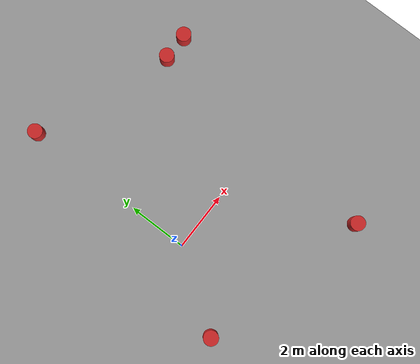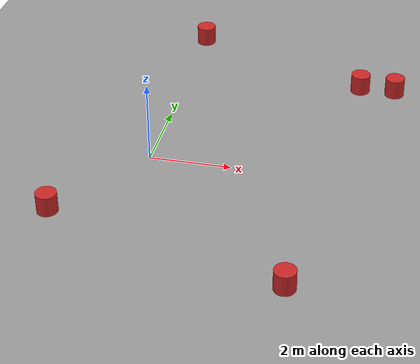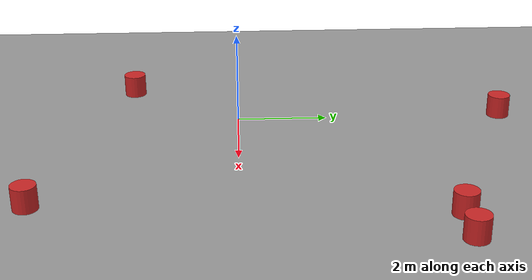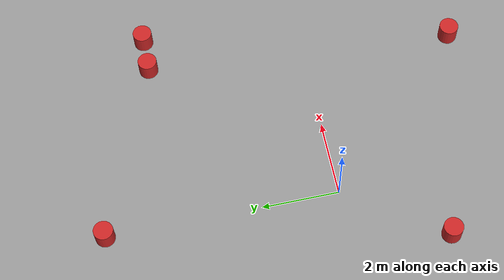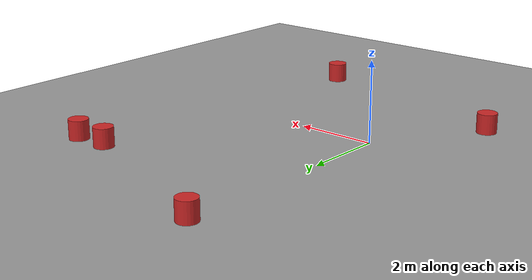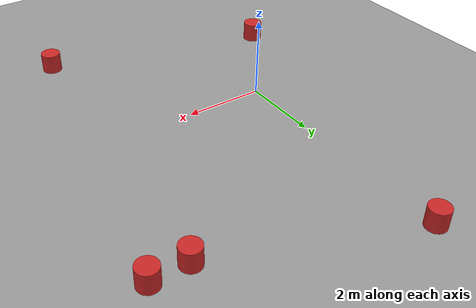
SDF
<sdf version="1.7">
 <world name="default">
  <gravity>0 0 -9.8</gravity>
  <magnetic_field>6e-06 2.3e-05 -4.2e-05</magnetic_field>
  <atmosphere type="adiabatic"/>
  <physics name="default_physics" default="0" type="ode">
   <max_step_size>0.001</max_step_size>
   <real_time_factor>1</real_time_factor>
   <real_time_update_rate>1000</real_time_update_rate>
  </physics>
  <scene><ambient>0.4 0.4 0.4 1</ambient><background>0.8 0.8 0.8 1</background><shadows>1</shadows></scene>
  <audio><device>default</device></audio>
  <spherical_coordinates>
   <surface_model>EARTH_WGS84</surface_model>
   <latitude_deg>0</latitude_deg>
   <longitude_deg>0</longitude_deg>
   <elevation>0</elevation>
   <heading_deg>0</heading_deg>
  </spherical_coordinates>
  <model name="Untitled"><pose>0.075 0 0 0 -0 0</pose><static>1</static></model>
  <model name="cylinder_0">
   <link name="link">
    <inertial>
     <mass>0.128591</mass>
     <inertia>
      <ixx>0.00474038</ixx>
      <ixy>0</ixy>
      <ixz>0</ixz>
      <iyy>0.00474038</iyy>
      <iyz>0</iyz>
      <izz>0.00414085</izz>
     </inertia>
    </inertial>
    <visual name="visual">
     <geometry><cylinder><radius>0.25</radius><length>0.5</length></cylinder></geometry>
     <material>
      <script><name>Gazebo/RedBright</name><uri>file://media/materials/scripts/gazebo.material</uri></script>
     </material>
    </visual>
    <collision name="collision">
     <geometry><cylinder><radius>0.25</radius><length>0.5</length></cylinder></geometry>
     <surface>
      <friction>
       <ode><mu>0</mu><mu2>0</mu2><fdir1>0 0 0</fdir1><slip1>0</slip1><slip2>0</slip2></ode>
       <torsional>
        <coefficient>1</coefficient>
        <patch_radius>0</patch_radius>
        <surface_radius>0</surface_radius>
        <use_patch_radius>1</use_patch_radius>
        <ode><slip>0</slip></ode>
       </torsional>
      </friction>
      <bounce><restitution_coefficient>0</restitution_coefficient><threshold>1e+06</threshold></bounce>
      <contact>
       <collide_without_contact>0</collide_without_contact>
       <collide_without_contact_bitmask>1</collide_without_contact_bitmask>
       <collide_bitmask>1</collide_bitmask>
       <ode>
        <soft_cfm>0</soft_cfm>
        <soft_erp>0.2</soft_erp>
        <kp>1e+13</kp>
        <kd>1</kd>
        <max_vel>0.01</max_vel>
        <min_depth>0</min_depth>
       </ode>
       <bullet>
        <split_impulse>1</split_impulse>
        <split_impulse_penetration_threshold>-0.01</split_impulse_penetration_threshold>
        <soft_cfm>0</soft_cfm>
        <soft_erp>0.2</soft_erp>
        <kp>1e+13</kp>
        <kd>1</kd>
       </bullet>
      </contact>
     </surface>
    </collision>
   </link>
   <static>0</static>
   <pose>5.5 4.2 0.249993 -7e-06 -6e-06 -0</pose>
  </model>
  <model name="cylinder_1">
   <link name="link">
    <inertial>
     <mass>0.128591</mass>
     <inertia>
      <ixx>0.00474038</ixx>
      <ixy>0</ixy>
      <ixz>0</ixz>
      <iyy>0.00474038</iyy>
      <iyz>0</iyz>
      <izz>0.00414085</izz>
     </inertia>
    </inertial>
    <visual name="visual">
     <geometry><cylinder><radius>0.25</radius><length>0.5</length></cylinder></geometry>
     <material>
      <script><name>Gazebo/RedBright</name><uri>file://media/materials/scripts/gazebo.material</uri></script>
     </material>
    </visual>
    <collision name="collision">
     <geometry><cylinder><radius>0.25</radius><length>0.5</length></cylinder></geometry>
     <surface>
      <friction>
       <ode><mu>0</mu><mu2>0</mu2><fdir1>0 0 0</fdir1><slip1>0</slip1><slip2>0</slip2></ode>
       <torsional>
        <coefficient>1</coefficient>
        <patch_radius>0</patch_radius>
        <surface_radius>0</surface_radius>
        <use_patch_radius>1</use_patch_radius>
        <ode><slip>0</slip></ode>
       </torsional>
      </friction>
      <bounce><restitution_coefficient>0</restitution_coefficient><threshold>1e+06</threshold></bounce>
      <contact>
       <collide_without_contact>0</collide_without_contact>
       <collide_without_contact_bitmask>1</collide_without_contact_bitmask>
       <collide_bitmask>1</collide_bitmask>
       <ode>
        <soft_cfm>0</soft_cfm>
        <soft_erp>0.2</soft_erp>
        <kp>1e+13</kp>
        <kd>1</kd>
        <max_vel>0.01</max_vel>
        <min_depth>0</min_depth>
       </ode>
       <bullet>
        <split_impulse>1</split_impulse>
        <split_impulse_penetration_threshold>-0.01</split_impulse_penetration_threshold>
        <soft_cfm>0</soft_cfm>
        <soft_erp>0.2</soft_erp>
        <kp>1e+13</kp>
        <kd>1</kd>
       </bullet>
      </contact>
     </surface>
    </collision>
   </link>
   <static>0</static>
   <pose>4 -4 0.249999 0 -0 0</pose>
  </model>
  <model name="cylinder_2">
   <link name="link">
    <inertial>
     <mass>0.128591</mass>
     <inertia>
      <ixx>0.00474038</ixx>
      <ixy>0</ixy>
      <ixz>0</ixz>
      <iyy>0.00474038</iyy>
      <iyz>0</iyz>
      <izz>0.00414085</izz>
     </inertia>
    </inertial>
    <visual name="visual">
     <geometry><cylinder><radius>0.25</radius><length>0.5</length></cylinder></geometry>
     <material>
      <script><name>Gazebo/RedBright</name><uri>file://media/materials/scripts/gazebo.material</uri></script>
     </material>
    </visual>
    <collision name="collision">
     <geometry><cylinder><radius>0.25</radius><length>0.5</length></cylinder></geometry>
     <surface>
      <friction>
       <ode><mu>0</mu><mu2>0</mu2><fdir1>0 0 0</fdir1><slip1>0</slip1><slip2>0</slip2></ode>
       <torsional>
        <coefficient>1</coefficient>
        <patch_radius>0</patch_radius>
        <surface_radius>0</surface_radius>
        <use_patch_radius>1</use_patch_radius>
        <ode><slip>0</slip></ode>
       </torsional>
      </friction>
      <bounce><restitution_coefficient>0</restitution_coefficient><threshold>1e+06</threshold></bounce>
      <contact>
       <collide_without_contact>0</collide_without_contact>
       <collide_without_contact_bitmask>1</collide_without_contact_bitmask>
       <collide_bitmask>1</collide_bitmask>
       <ode>
        <soft_cfm>0</soft_cfm>
        <soft_erp>0.2</soft_erp>
        <kp>1e+13</kp>
        <kd>1</kd>
        <max_vel>0.01</max_vel>
        <min_depth>0</min_depth>
       </ode>
       <bullet>
        <split_impulse>1</split_impulse>
        <split_impulse_penetration_threshold>-0.01</split_impulse_penetration_threshold>
        <soft_cfm>0</soft_cfm>
        <soft_erp>0.2</soft_erp>
        <kp>1e+13</kp>
        <kd>1</kd>
       </bullet>
      </contact>
     </surface>
    </collision>
   </link>
   <static>0</static>
   <pose>4.6 4.2 0.249999 0 -0 0</pose>
  </model>
  <model name="cylinder_3">
   <link name="link">
    <inertial>
     <mass>0.128591</mass>
     <inertia>
      <ixx>0.00474038</ixx>
      <ixy>0</ixy>
      <ixz>0</ixz>
      <iyy>0.00474038</iyy>
      <iyz>0</iyz>
      <izz>0.00414085</izz>
     </inertia>
    </inertial>
    <visual name="visual">
     <geometry><cylinder><radius>0.25</radius><length>0.5</length></cylinder></geometry>
     <material>
      <script><name>Gazebo/RedBright</name><uri>file://media/materials/scripts/gazebo.material</uri></script>
     </material>
    </visual>
    <collision name="collision">
     <geometry><cylinder><radius>0.25</radius><length>0.5</length></cylinder></geometry>
     <surface>
      <friction>
       <ode><mu>0</mu><mu2>0</mu2><fdir1>0 0 0</fdir1><slip1>0</slip1><slip2>0</slip2></ode>
       <torsional>
        <coefficient>1</coefficient>
        <patch_radius>0</patch_radius>
        <surface_radius>0</surface_radius>
        <use_patch_radius>1</use_patch_radius>
        <ode><slip>0</slip></ode>
       </torsional>
      </friction>
      <bounce><restitution_coefficient>0</restitution_coefficient><threshold>1e+06</threshold></bounce>
      <contact>
       <collide_without_contact>0</collide_without_contact>
       <collide_without_contact_bitmask>1</collide_without_contact_bitmask>
       <collide_bitmask>1</collide_bitmask>
       <ode>
        <soft_cfm>0</soft_cfm>
        <soft_erp>0.2</soft_erp>
        <kp>1e+13</kp>
        <kd>1</kd>
        <max_vel>0.01</max_vel>
        <min_depth>0</min_depth>
       </ode>
       <bullet>
        <split_impulse>1</split_impulse>
        <split_impulse_penetration_threshold>-0.01</split_impulse_penetration_threshold>
        <soft_cfm>0</soft_cfm>
        <soft_erp>0.2</soft_erp>
        <kp>1e+13</kp>
        <kd>1</kd>
       </bullet>
      </contact>
     </surface>
    </collision>
   </link>
   <static>0</static>
   <pose>-1.7 -2.5 0.249999 0 -0 0</pose>
  </model>
  <model name="cylinder_4">
   <link name="link">
    <inertial>
     <mass>0.128591</mass>
     <inertia>
      <ixx>0.00474038</ixx>
      <ixy>0</ixy>
      <ixz>0</ixz>
      <iyy>0.00474038</iyy>
      <iyz>0</iyz>
      <izz>0.00414085</izz>
     </inertia>
    </inertial>
    <visual name="visual">
     <geometry><cylinder><radius>0.25</radius><length>0.5</length></cylinder></geometry>
     <material>
      <script><name>Gazebo/RedBright</name><uri>file://media/materials/scripts/gazebo.material</uri></script>
     </material>
    </visual>
    <collision name="collision">
     <geometry><cylinder><radius>0.25</radius><length>0.5</length></cylinder></geometry>
     <surface>
      <friction>
       <ode><mu>0</mu><mu2>0</mu2><fdir1>0 0 0</fdir1><slip1>0</slip1><slip2>0</slip2></ode>
       <torsional>
        <coefficient>1</coefficient>
        <patch_radius>0</patch_radius>
        <surface_radius>0</surface_radius>
        <use_patch_radius>1</use_patch_radius>
        <ode><slip>0</slip></ode>
       </torsional>
      </friction>
      <bounce><restitution_coefficient>0</restitution_coefficient><threshold>1e+06</threshold></bounce>
      <contact>
       <collide_without_contact>0</collide_without_contact>
       <collide_without_contact_bitmask>1</collide_without_contact_bitmask>
       <collide_bitmask>1</collide_bitmask>
       <ode>
        <soft_cfm>0</soft_cfm>
        <soft_erp>0.2</soft_erp>
        <kp>1e+13</kp>
        <kd>1</kd>
        <max_vel>0.01</max_vel>
        <min_depth>0</min_depth>
       </ode>
       <bullet>
        <split_impulse>1</split_impulse>
        <split_impulse_penetration_threshold>-0.01</split_impulse_penetration_threshold>
        <soft_cfm>0</soft_cfm>
        <soft_erp>0.2</soft_erp>
        <kp>1e+13</kp>
        <kd>1</kd>
       </bullet>
      </contact>
     </surface>
    </collision>
   </link>
   <static>0</static>
   <pose>-1e-06 6 0.249993 -7e-06 -6e-06 -0</pose>
  </model>
  <model name="ground_plane_0">
   <static>1</static>
   <link name="link">
    <collision name="collision">
     <geometry><plane><normal>0 0 1</normal><size>100 100</size></plane></geometry>
     <surface><friction><ode><mu>100</mu><mu2>50</mu2></ode></friction></surface>
    </collision>
    <visual name="visual">
     <cast_shadows>0</cast_shadows>
     <geometry><plane><normal>0 0 1</normal><size>100 100</size></plane></geometry>
     <material>
      <script><uri>file://media/materials/scripts/gazebo.material</uri><name>Gazebo/Grey</name></script>
     </material>
    </visual>
   </link>
   <pose>-5.65239 3.59737 0 0 -0 0</pose>
  </model>
  <light name="sun" type="directional">
   <pose>66.4392 0.101862 10 0 -0 0</pose>
   <diffuse>0.8 0.8 0.8 1</diffuse>
   <specular>0.2 0.2 0.2 1</specular>
   <attenuation>
    <range>1000</range>
    <constant>0.9</constant>
    <linear>0.01</linear>
    <quadratic>0.001</quadratic>
   </attenuation>
   <direction>-0.5 0.1 -0.9</direction>
  </light>
  <plugin name="gazebo_ros_state" filename="libgazebo_ros_state.so">
   <ros><namespace>/gazebo</namespace></ros>
  </plugin>
 </world>
</sdf>
